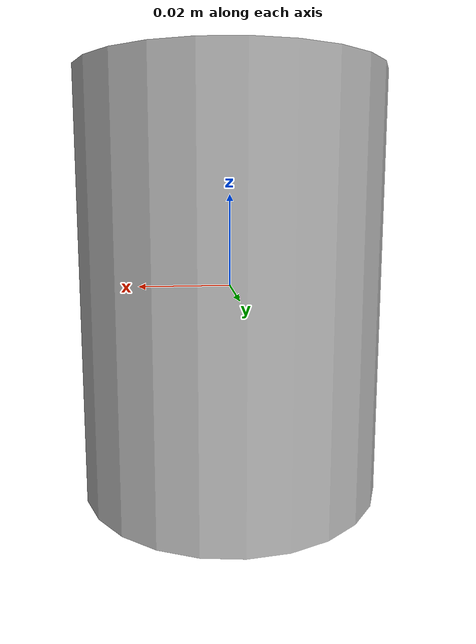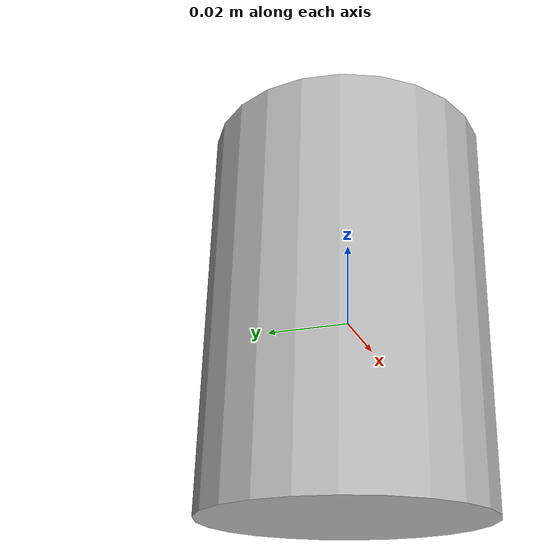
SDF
<?xml version='1.0'?>
<sdf version='1.6'>
  <model name='cup'>
    <link name='cup_base_link'>
      <pose frame=''>0 0 0 0 -0 0</pose>
      <inertial>
        <pose frame=''>-0.002974 -0.008419 0.237851 0 -0 0</pose>
        <mass>67.9184</mass>
        <inertia>
          <ixx>3.97207</ixx>
          <ixy>-0.00341811</ixy>
          <ixz>-0.0764064</ixz>
          <iyy>4.23328</iyy>
          <iyz>-0.075981</iyz>
          <izz>0.697625</izz>
        </inertia>
      </inertial>
      <collision name='cup_collision'>
        <pose frame=''>0 0 0.0 0 -0 0</pose>
        <geometry>
          <cylinder>
            <radius>0.0325</radius>
            <length>0.09</length>
          </cylinder>
        </geometry>
      </collision>
      <visual name='cup_visual'>
        <pose frame=''>0 0 0.0 0 -0 0</pose>
        <geometry>
          <cylinder>
            <radius>0.0325</radius>
            <length>0.09</length>
          </cylinder>
        </geometry>
      </visual>
    </link>
  </model>
</sdf>
